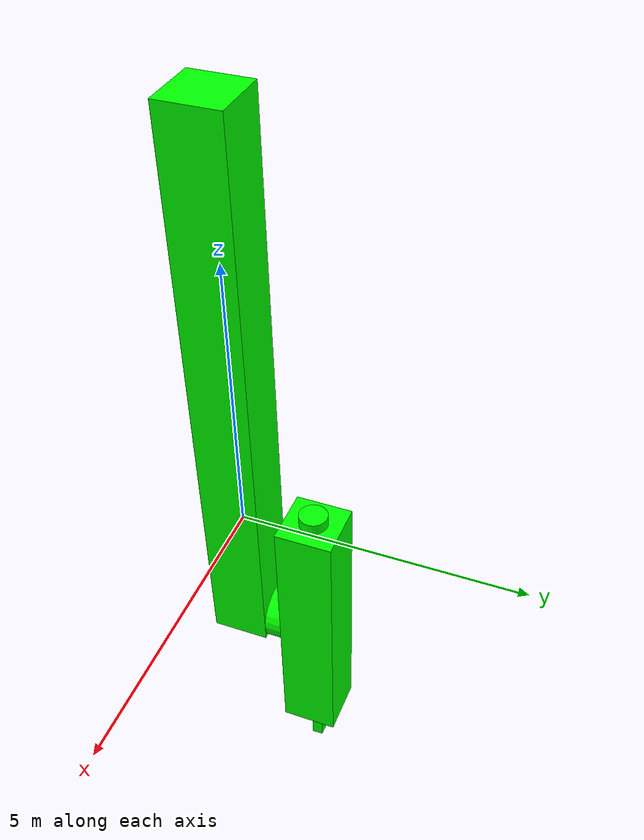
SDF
<?xml version="1.0"?>
<sdf version="1.8">
<model name="box">
      <self_collide>false</self_collide>
      <link name="body">
      <gravity>false</gravity>
      <inertial>
        <mass>1.0</mass>
        <inertia>
          <ixx>0.166667</ixx>
          <ixy>0</ixy>
          <ixz>0</ixz>
          <iyy>0.166667</iyy>
          <iyz>0</iyz>
          <izz>0.166667</izz>
        </inertia>
      </inertial>

      <collision name="collision_right">
        <pose>0 0 2.5 0 0 0</pose>
        <geometry><box><size>0.9 0.9 10</size></box></geometry>
      </collision>
      <visual name="visual_right">
        <pose>0 0 2.5 0 0 0</pose>
        <geometry><box><size>1 1 10</size></box></geometry>
        <material><ambient>0 1 0 1</ambient><diffuse>0 1 0 1</diffuse></material>
      </visual>
    </link>
    <link name="zahvat">
      <pose>0 0.65 -2.2 0 0 0</pose>
      <gravity>false</gravity>
      <inertial>
        <mass>1.0</mass>
        <inertia>
          <ixx>0.166667</ixx>
          <ixy>0</ixy>
          <ixz>0</ixz>
          <iyy>0.166667</iyy>
          <iyz>0</iyz>
          <izz>0.166667</izz>
        </inertia>
      </inertial>
      <collision name="val">
        <pose>0 0 0 1.5708 0 0</pose>
        <geometry><cylinder><radius>0.5</radius><length>0.3</length></cylinder></geometry>
      </collision>
      <visual name="val">
        <pose>0 0 0 1.5708 0 0</pose>
        <geometry><cylinder><radius>0.5</radius><length>0.3</length></cylinder></geometry>
        <material><ambient>0 1 0 1</ambient><diffuse>0 1 0 1</diffuse></material>
      </visual>
      <collision name="center">
        <pose>0 0.65 0 0 0 0</pose>
        <geometry><box><size>1 1 5</size></box></geometry>
      </collision>
      <visual name="center">
        <pose>0 0.65 0 0 0 0</pose>
        <geometry><box><size>1 1 5</size></box></geometry>
        <material><ambient>0 1 0 1</ambient><diffuse>0 1 0 1</diffuse></material>
      </visual>
      <collision name="zahvat_collision">
        <pose>0 0.65 -3.0 0 0 0</pose>
        <geometry><box><size>0.2 0.2 1</size></box></geometry>
      </collision>
      <visual name="zahvat">
        <pose>0 0.65 -3.0 0 0 0</pose>
        <geometry><box><size>0.2 0.2 1</size></box></geometry>
        <material><ambient>0 1 0 1</ambient><diffuse>0 1 0 1</diffuse></material>
      </visual>
       <sensor name="left_finger_contact" type="contact">
         <always_on>true</always_on>
         <update_rate>50.0</update_rate>
         <contact>
            <collision>zahvat_collision</collision>
         </contact>
       </sensor>

       <collision name="lazer">
        <pose>0 0.65 2.6 0 0 0</pose>
        <geometry><cylinder><radius>0.25</radius><length>0.2</length></cylinder></geometry>
      </collision>
      <visual name="lazer">
        <pose>0 0.65 2.6 0 0 0</pose>
        <geometry><cylinder><radius>0.25</radius><length>0.2</length></cylinder></geometry>
        <material><ambient>0 1 0 1</ambient><diffuse>0 1 0 1</diffuse></material>
      </visual>
    </link>
    <joint name="val_body" type="revolute">
    <parent>body</parent>
    <child>zahvat</child>
    <axis><xyz>0 1 0</xyz>
      <limit>

        <effort>1000</effort>
        <velocity>10</velocity>
      </limit>
    </axis>
    </joint>
      <plugin filename="gz-sim-velocity-control-system" name="gz::sim::systems::VelocityControl">
        <topic>/cmd_vel_z</topic>
      </plugin>

      <plugin
        filename="gz-sim-joint-position-controller-system"
        name="gz::sim::systems::JointPositionController">
        <joint_name>val_body</joint_name>
        <topic>/cmd_vel_rotate</topic>
        <use_actuator_msg>false</use_actuator_msg>
        <p_gain>50.0</p_gain>
        <i_gain>1.0</i_gain>
        <d_gain>5.0</d_gain>
        <i_max>10.0</i_max>
        <i_min>-10.0</i_min>
      </plugin>
      <plugin
        filename="libgz-sim-detachable-joint-system.so"
        name="gz::sim::systems::DetachableJoint">
        <parent_link>zahvat</parent_link>
        <child_model>box3</child_model>
        <child_link>body</child_link>
        <attach_topic>/gripper/attach</attach_topic>
        <detach_topic>/gripper/detach</detach_topic>
        <output_topic>/gripper/status</output_topic>
        <suppress_child_warning>true</suppress_child_warning>
      </plugin>
    </model>
</sdf>
